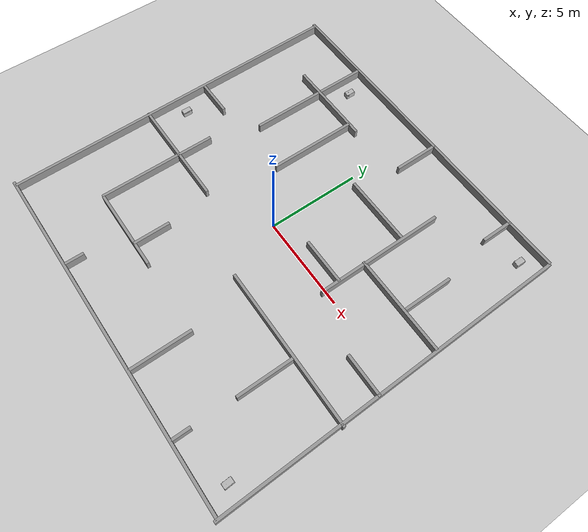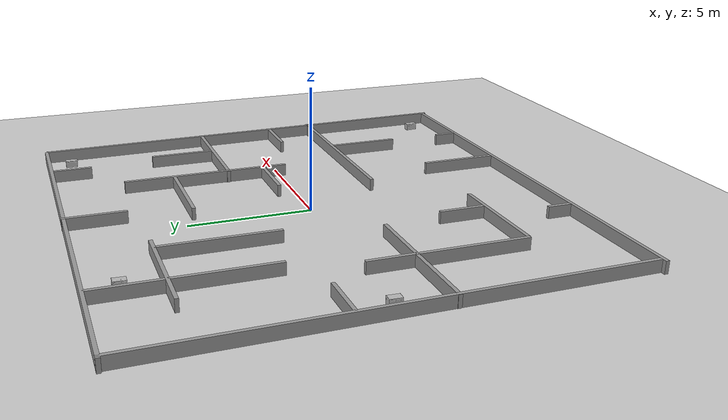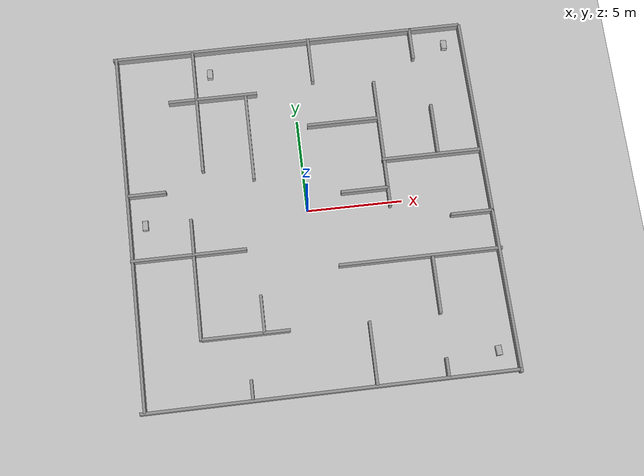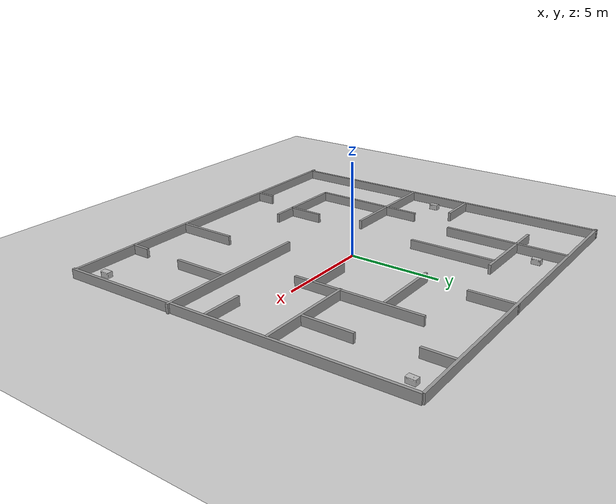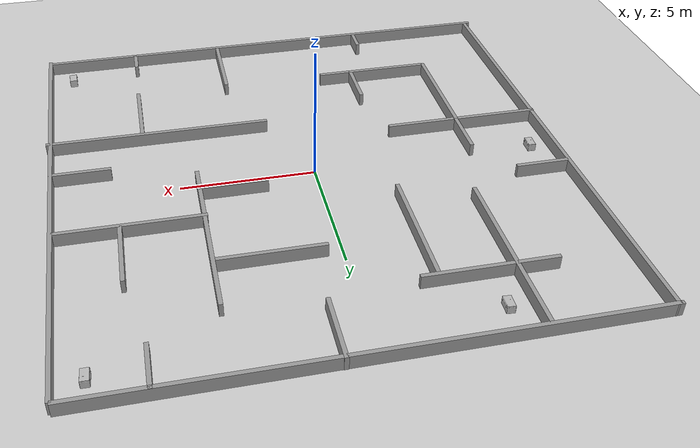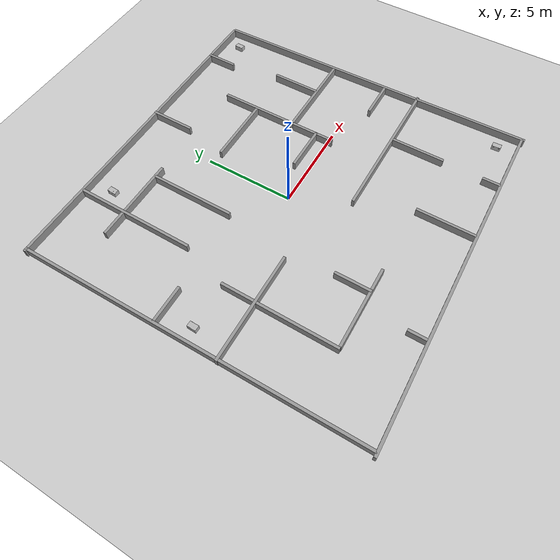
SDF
<sdf version="1.7">
 <world name="default">
  <light name="sun" type="directional">
   <cast_shadows>0</cast_shadows>
   <pose>0 0 10 0 -0 0</pose>
   <diffuse>0.8 0.8 0.8 1</diffuse>
   <specular>0.2 0.2 0.2 1</specular>
   <attenuation>
    <range>1000</range>
    <constant>0.9</constant>
    <linear>0.01</linear>
    <quadratic>0.001</quadratic>
   </attenuation>
   <direction>-0.5 0.1 -0.9</direction>
   <spot><inner_angle>0</inner_angle><outer_angle>0</outer_angle><falloff>0</falloff></spot>
  </light>
  <model name="ground_plane">
   <static>1</static>
   <link name="link">
    <collision name="collision">
     <geometry><plane><normal>0 0 1</normal><size>100 100</size></plane></geometry>
     <surface><friction><ode><mu>100</mu><mu2>50</mu2></ode></friction></surface>
    </collision>
    <visual name="visual">
     <cast_shadows>0</cast_shadows>
     <geometry><plane><normal>0 0 1</normal><size>100 100</size></plane></geometry>
     <material>
      <script><uri>file://media/materials/scripts/gazebo.material</uri><name>Gazebo/Grey</name></script>
     </material>
    </visual>
   </link>
  </model>
  <gravity>0 0 -9.8</gravity>
  <scene><ambient>0.4 0.4 0.4 1</ambient><background>0.7 0.7 0.7 1</background><shadows>1</shadows></scene>
  <magnetic_field>6e-06 2.3e-05 -4.2e-05</magnetic_field>
  <atmosphere type="adiabatic"/>
  <physics type="ode">
   <max_step_size>0.001</max_step_size>
   <real_time_factor>1</real_time_factor>
   <real_time_update_rate>1000</real_time_update_rate>
  </physics>
  <audio><device>default</device></audio>
  <spherical_coordinates>
   <surface_model>EARTH_WGS84</surface_model>
   <latitude_deg>0</latitude_deg>
   <longitude_deg>0</longitude_deg>
   <elevation>0</elevation>
   <heading_deg>0</heading_deg>
  </spherical_coordinates>
  <model name="Untitled">
   <pose>0.1509 -0.023948 0 0 -0 0</pose>
   <link name="Wall_0">
    <collision name="Wall_0_Collision">
     <geometry><box><size>19.0711 0.15 0.5</size></box></geometry>
     <pose>0 0 0.25 0 -0 0</pose>
    </collision>
    <visual name="Wall_0_Visual">
     <pose>0 0 0.25 0 -0 0</pose>
     <geometry><box><size>19.0711 0.15 0.5</size></box></geometry>
     <material>
      <script><uri>file://media/materials/scripts/gazebo.material</uri><name>Gazebo/Grey</name></script>
      <ambient>1 1 1 1</ambient>
     </material>
     <meta><layer>0</layer></meta>
    </visual>
    <pose>-9.41202 0.027338 0 0 -0 1.58112</pose>
   </link>
   <link name="Wall_11">
    <collision name="Wall_11_Collision">
     <geometry><box><size>4.5 0.15 0.5</size></box></geometry>
     <pose>0 0 0.25 0 -0 0</pose>
    </collision>
    <visual name="Wall_11_Visual">
     <pose>0 0 0.25 0 -0 0</pose>
     <geometry><box><size>4.5 0.15 0.5</size></box></geometry>
     <material>
      <script><uri>file://media/materials/scripts/gazebo.material</uri><name>Gazebo/Grey</name></script>
      <ambient>1 1 1 1</ambient>
     </material>
     <meta><layer>0</layer></meta>
    </visual>
    <pose>-3.9379 -6.16505 0 0 -0 0</pose>
   </link>
   <link name="Wall_13">
    <collision name="Wall_13_Collision">
     <geometry><box><size>7 0.15 0.5</size></box></geometry>
     <pose>0 0 0.25 0 -0 0</pose>
    </collision>
    <visual name="Wall_13_Visual">
     <pose>0 0 0.25 0 -0 0</pose>
     <geometry><box><size>7 0.15 0.5</size></box></geometry>
     <material>
      <script><uri>file://media/materials/scripts/gazebo.material</uri><name>Gazebo/Grey</name></script>
      <ambient>1 1 1 1</ambient>
     </material>
     <meta><layer>0</layer></meta>
    </visual>
    <pose>4.1881 3.23495 0 0 -0 1.5708</pose>
   </link>
   <link name="Wall_16">
    <collision name="Wall_16_Collision">
     <geometry><box><size>5.25 0.15 0.5</size></box></geometry>
     <pose>0 0 0.25 0 -0 0</pose>
    </collision>
    <visual name="Wall_16_Visual">
     <pose>0 0 0.25 0 -0 0</pose>
     <geometry><box><size>5.25 0.15 0.5</size></box></geometry>
     <material>
      <script><uri>file://media/materials/scripts/gazebo.material</uri><name>Gazebo/Grey</name></script>
      <ambient>1 1 1 1</ambient>
     </material>
     <meta><layer>0</layer></meta>
    </visual>
    <pose>6.7031 2.30195 0 0 -0 0</pose>
   </link>
   <link name="Wall_18">
    <collision name="Wall_18_Collision">
     <geometry><box><size>2.75 0.15 0.5</size></box></geometry>
     <pose>0 0 0.25 0 -0 0</pose>
    </collision>
    <visual name="Wall_18_Visual">
     <pose>0 0 0.25 0 -0 0</pose>
     <geometry><box><size>2.75 0.15 0.5</size></box></geometry>
     <material>
      <script><uri>file://media/materials/scripts/gazebo.material</uri><name>Gazebo/Grey</name></script>
      <ambient>1 1 1 1</ambient>
     </material>
     <meta><layer>0</layer></meta>
    </visual>
    <pose>7.0691 3.70295 0 0 -0 1.5708</pose>
   </link>
   <link name="Wall_2">
    <collision name="Wall_2_Collision">
     <geometry><box><size>18.8914 0.15 0.5</size></box></geometry>
     <pose>0 0 0.25 0 -0 0</pose>
    </collision>
    <visual name="Wall_2_Visual">
     <pose>0 0 0.25 0 -0 0</pose>
     <geometry><box><size>18.8914 0.15 0.5</size></box></geometry>
     <material>
      <script><uri>file://media/materials/scripts/gazebo.material</uri><name>Gazebo/Grey</name></script>
      <ambient>1 1 1 1</ambient>
     </material>
     <meta><layer>0</layer></meta>
    </visual>
    <pose>-0.220361 9.5009 0 0 -0 0.001441</pose>
   </link>
   <link name="Wall_21">
    <collision name="Wall_21_Collision">
     <geometry><box><size>3.75 0.15 0.5</size></box></geometry>
     <pose>0 0 0.25 0 -0 0</pose>
    </collision>
    <visual name="Wall_21_Visual">
     <pose>0 0 0.25 0 -0 0</pose>
     <geometry><box><size>3.75 0.15 0.5</size></box></geometry>
     <material>
      <script><uri>file://media/materials/scripts/gazebo.material</uri><name>Gazebo/Grey</name></script>
      <ambient>1 1 1 1</ambient>
     </material>
     <meta><layer>0</layer></meta>
    </visual>
    <pose>2.2381 4.63895 0 0 -0 0</pose>
   </link>
   <link name="Wall_23">
    <collision name="Wall_23_Collision">
     <geometry><box><size>6.75 0.15 0.5</size></box></geometry>
     <pose>0 0 0.25 0 -0 0</pose>
    </collision>
    <visual name="Wall_23_Visual">
     <pose>0 0 0.25 0 -0 0</pose>
     <geometry><box><size>6.75 0.15 0.5</size></box></geometry>
     <material>
      <script><uri>file://media/materials/scripts/gazebo.material</uri><name>Gazebo/Grey</name></script>
      <ambient>1 1 1 1</ambient>
     </material>
     <meta><layer>0</layer></meta>
    </visual>
    <pose>-5.3799 6.09495 0 0 -0 1.5708</pose>
   </link>
   <link name="Wall_26">
    <collision name="Wall_26_Collision">
     <geometry><box><size>8.5 0.15 0.5</size></box></geometry>
     <pose>0 0 0.25 0 -0 0</pose>
    </collision>
    <visual name="Wall_26_Visual">
     <pose>0 0 0.25 0 -0 0</pose>
     <geometry><box><size>8.5 0.15 0.5</size></box></geometry>
     <material>
      <script><uri>file://media/materials/scripts/gazebo.material</uri><name>Gazebo/Grey</name></script>
      <ambient>1 1 1 1</ambient>
     </material>
     <meta><layer>0</layer></meta>
    </visual>
    <pose>5.3801 -3.11305 0 0 -0 0</pose>
   </link>
   <link name="Wall_28">
    <collision name="Wall_28_Collision">
     <geometry><box><size>3 0.15 0.5</size></box></geometry>
     <pose>0 0 0.25 0 -0 0</pose>
    </collision>
    <visual name="Wall_28_Visual">
     <pose>0 0 0.25 0 -0 0</pose>
     <geometry><box><size>3 0.15 0.5</size></box></geometry>
     <material>
      <script><uri>file://media/materials/scripts/gazebo.material</uri><name>Gazebo/Grey</name></script>
      <ambient>1 1 1 1</ambient>
     </material>
     <meta><layer>0</layer></meta>
    </visual>
    <pose>5.9901 -4.67205 0 0 -0 1.5708</pose>
   </link>
   <link name="Wall_3">
    <collision name="Wall_3_Collision">
     <geometry><box><size>19.0735 0.15 0.5</size></box></geometry>
     <pose>0 0 0.25 0 -0 0</pose>
    </collision>
    <visual name="Wall_3_Visual">
     <pose>0 0 0.25 0 -0 0</pose>
     <geometry><box><size>19.0735 0.15 0.5</size></box></geometry>
     <material>
      <script><uri>file://media/materials/scripts/gazebo.material</uri><name>Gazebo/Grey</name></script>
      <ambient>1 1 1 1</ambient>
     </material>
     <meta><layer>0</layer></meta>
    </visual>
    <pose>9.41072 -0.027019 0 0 -0 -1.55187</pose>
   </link>
   <link name="Wall_30">
    <collision name="Wall_30_Collision">
     <geometry><box><size>4.75 0.15 0.5</size></box></geometry>
     <pose>0 0 0.25 0 -0 0</pose>
    </collision>
    <visual name="Wall_30_Visual">
     <pose>0 0 0.25 0 -0 0</pose>
     <geometry><box><size>4.75 0.15 0.5</size></box></geometry>
     <material>
      <script><uri>file://media/materials/scripts/gazebo.material</uri><name>Gazebo/Grey</name></script>
      <ambient>1 1 1 1</ambient>
     </material>
     <meta><layer>0</layer></meta>
    </visual>
    <pose>-4.5039 6.74495 0 0 -0 3.14159</pose>
   </link>
   <link name="Wall_32">
    <collision name="Wall_32_Collision">
     <geometry><box><size>3.25 0.15 0.5</size></box></geometry>
     <pose>0 0 0.25 0 -0 0</pose>
    </collision>
    <visual name="Wall_32_Visual">
     <pose>0 0 0.25 0 -0 0</pose>
     <geometry><box><size>3.25 0.15 0.5</size></box></geometry>
     <material>
      <script><uri>file://media/materials/scripts/gazebo.material</uri><name>Gazebo/Grey</name></script>
      <ambient>1 1 1 1</ambient>
     </material>
     <meta><layer>0</layer></meta>
    </visual>
    <pose>2.3311 -7.78005 0 0 -0 -1.5708</pose>
   </link>
   <link name="Wall_4">
    <collision name="Wall_4_Collision">
     <geometry><box><size>19.1358 0.15 0.5</size></box></geometry>
     <pose>0 0 0.25 0 -0 0</pose>
    </collision>
    <visual name="Wall_4_Visual">
     <pose>0 0 0.25 0 -0 0</pose>
     <geometry><box><size>19.1358 0.15 0.5</size></box></geometry>
     <material>
      <script><uri>file://media/materials/scripts/gazebo.material</uri><name>Gazebo/Grey</name></script>
      <ambient>1 1 1 1</ambient>
     </material>
     <meta><layer>0</layer></meta>
    </visual>
    <pose>0.015637 -9.45989 0 0 -0 -3.13588</pose>
   </link>
   <link name="Wall_6">
    <collision name="Wall_6_Collision">
     <geometry><box><size>6 0.15 0.5</size></box></geometry>
     <pose>0 0 0.25 0 -0 0</pose>
    </collision>
    <visual name="Wall_6_Visual">
     <pose>0 0 0.25 0 -0 0</pose>
     <geometry><box><size>6 0.15 0.5</size></box></geometry>
     <material>
      <script><uri>file://media/materials/scripts/gazebo.material</uri><name>Gazebo/Grey</name></script>
      <ambient>1 1 1 1</ambient>
     </material>
     <meta><layer>0</layer></meta>
    </visual>
    <pose>-6.4909 -1.73805 0 0 -0 3.14159</pose>
   </link>
   <link name="Wall_8">
    <collision name="Wall_8_Collision">
     <geometry><box><size>4.5 0.15 0.5</size></box></geometry>
     <pose>0 0 0.25 0 -0 0</pose>
    </collision>
    <visual name="Wall_8_Visual">
     <pose>0 0 0.25 0 -0 0</pose>
     <geometry><box><size>4.5 0.15 0.5</size></box></geometry>
     <material>
      <script><uri>file://media/materials/scripts/gazebo.material</uri><name>Gazebo/Grey</name></script>
      <ambient>1 1 1 1</ambient>
     </material>
     <meta><layer>0</layer></meta>
    </visual>
    <pose>-6.2409 -3.96305 0 0 -0 1.5708</pose>
   </link>
   <static>1</static>
  </model>
  <model name="Untitled_0">
   <pose>-0.894 0.236 0 0 -0 0</pose>
   <link name="Wall_39">
    <collision name="Wall_39_Collision">
     <geometry><box><size>2 0.15 0.5</size></box></geometry>
     <pose>0 0 0.25 0 -0 0</pose>
    </collision>
    <visual name="Wall_39_Visual">
     <pose>0 0 0.25 0 -0 0</pose>
     <geometry><box><size>2 0.15 0.5</size></box></geometry>
     <material>
      <script><uri>file://media/materials/scripts/gazebo.material</uri><name>Gazebo/Grey</name></script>
      <ambient>1 1 1 1</ambient>
     </material>
     <meta><layer>0</layer></meta>
    </visual>
    <pose>-5.182 -1.092 0 0 -0 1.5708</pose>
   </link>
   <link name="Wall_41">
    <collision name="Wall_41_Collision">
     <geometry><box><size>2 0.15 0.5</size></box></geometry>
     <pose>0 0 0.25 0 -0 0</pose>
    </collision>
    <visual name="Wall_41_Visual">
     <pose>0 0 0.25 0 -0 0</pose>
     <geometry><box><size>2 0.15 0.5</size></box></geometry>
     <material>
      <script><uri>file://media/materials/scripts/gazebo.material</uri><name>Gazebo/Grey</name></script>
      <ambient>1 1 1 1</ambient>
     </material>
     <meta><layer>0</layer></meta>
    </visual>
    <pose>-1.968 -5.473 0 0 -0 1.5708</pose>
   </link>
   <link name="Wall_43">
    <collision name="Wall_43_Collision">
     <geometry><box><size>2.5 0.15 0.5</size></box></geometry>
     <pose>0 0 0.25 0 -0 0</pose>
    </collision>
    <visual name="Wall_43_Visual">
     <pose>0 0 0.25 0 -0 0</pose>
     <geometry><box><size>2.5 0.15 0.5</size></box></geometry>
     <material>
      <script><uri>file://media/materials/scripts/gazebo.material</uri><name>Gazebo/Grey</name></script>
      <ambient>1 1 1 1</ambient>
     </material>
     <meta><layer>0</layer></meta>
    </visual>
    <pose>4.007 0.497 0 0 -0 3.14159</pose>
   </link>
   <link name="Wall_45">
    <collision name="Wall_45_Collision">
     <geometry><box><size>4.75 0.15 0.5</size></box></geometry>
     <pose>0 0 0.25 0 -0 0</pose>
    </collision>
    <visual name="Wall_45_Visual">
     <pose>0 0 0.25 0 -0 0</pose>
     <geometry><box><size>4.75 0.15 0.5</size></box></geometry>
     <material>
      <script><uri>file://media/materials/scripts/gazebo.material</uri><name>Gazebo/Grey</name></script>
      <ambient>1 1 1 1</ambient>
     </material>
     <meta><layer>0</layer></meta>
    </visual>
    <pose>-1.706 4.098 0 0 -0 1.5708</pose>
   </link>
   <static>1</static>
  </model>
  <model name="Untitled_1">
   <pose>0.203 0.06 0 0 -0 0</pose>
   <link name="Wall_0">
    <collision name="Wall_0_Collision">
     <geometry><box><size>2 0.15 0.5</size></box></geometry>
     <pose>0 0 0.25 0 -0 0</pose>
    </collision>
    <visual name="Wall_0_Visual">
     <pose>0 0 0.25 0 -0 0</pose>
     <geometry><box><size>2 0.15 0.5</size></box></geometry>
     <material>
      <script><uri>file://media/materials/scripts/gazebo.material</uri><name>Gazebo/Grey</name></script>
      <ambient>1 1 1 1</ambient>
     </material>
     <meta><layer>0</layer></meta>
    </visual>
    <pose>-8.445 1.682 0 0 -0 3.14159</pose>
   </link>
   <link name="Wall_15">
    <collision name="Wall_15_Collision">
     <geometry><box><size>1 0.15 0.5</size></box></geometry>
     <pose>0 0 0.25 0 -0 0</pose>
    </collision>
    <visual name="Wall_15_Visual">
     <pose>0 0 0.25 0 -0 0</pose>
     <geometry><box><size>1 0.15 0.5</size></box></geometry>
     <material>
      <script><uri>file://media/materials/scripts/gazebo.material</uri><name>Gazebo/Grey</name></script>
      <ambient>1 1 1 1</ambient>
     </material>
     <meta><layer>0</layer></meta>
    </visual>
    <pose>-3.966 -9.006 0 0 -0 -1.5708</pose>
   </link>
   <link name="Wall_2">
    <collision name="Wall_2_Collision">
     <geometry><box><size>2.5 0.15 0.5</size></box></geometry>
     <pose>0 0 0.25 0 -0 0</pose>
    </collision>
    <visual name="Wall_2_Visual">
     <pose>0 0 0.25 0 -0 0</pose>
     <geometry><box><size>2.5 0.15 0.5</size></box></geometry>
     <material>
      <script><uri>file://media/materials/scripts/gazebo.material</uri><name>Gazebo/Grey</name></script>
      <ambient>1 1 1 1</ambient>
     </material>
     <meta><layer>0</layer></meta>
    </visual>
    <pose>0.884 8.256 0 0 -0 1.5708</pose>
   </link>
   <link name="Wall_4">
    <collision name="Wall_4_Collision">
     <geometry><box><size>2.25 0.15 0.5</size></box></geometry>
     <pose>0 0 0.25 0 -0 0</pose>
    </collision>
    <visual name="Wall_4_Visual">
     <pose>0 0 0.25 0 -0 0</pose>
     <geometry><box><size>2.25 0.15 0.5</size></box></geometry>
     <material>
      <script><uri>file://media/materials/scripts/gazebo.material</uri><name>Gazebo/Grey</name></script>
      <ambient>1 1 1 1</ambient>
     </material>
     <meta><layer>0</layer></meta>
    </visual>
    <pose>8.32 -1.16 0 0 -0 3.14159</pose>
   </link>
   <link name="Wall_6">
    <collision name="Wall_6_Collision">
     <geometry><box><size>1 0.15 0.5</size></box></geometry>
     <pose>0 0 0.25 0 -0 0</pose>
    </collision>
    <visual name="Wall_6_Visual">
     <pose>0 0 0.25 0 -0 0</pose>
     <geometry><box><size>1 0.15 0.5</size></box></geometry>
     <material>
      <script><uri>file://media/materials/scripts/gazebo.material</uri><name>Gazebo/Grey</name></script>
      <ambient>1 1 1 1</ambient>
     </material>
     <meta><layer>0</layer></meta>
    </visual>
    <pose>5.887 -9.002 0 0 -0 1.5708</pose>
   </link>
   <link name="Wall_8">
    <collision name="Wall_8_Collision">
     <geometry><box><size>1.75 0.15 0.5</size></box></geometry>
     <pose>0 0 0.25 0 -0 0</pose>
    </collision>
    <visual name="Wall_8_Visual">
     <pose>0 0 0.25 0 -0 0</pose>
     <geometry><box><size>1.75 0.15 0.5</size></box></geometry>
     <material>
      <script><uri>file://media/materials/scripts/gazebo.material</uri><name>Gazebo/Grey</name></script>
      <ambient>1 1 1 1</ambient>
     </material>
     <meta><layer>0</layer></meta>
    </visual>
    <pose>6.45 8.611 0 0 -0 1.5708</pose>
   </link>
   <static>1</static>
  </model>
  <model name="First Aid Kit">
   <static>1</static>
   <link name="link">
    <collision name="collision">
     <geometry>
      <mesh>
       <uri>/workspaces/robot-programming-assessment-1/install/john_bot/share/john_bot/models/First Aid Kit/meshes/first_aid_kit.dae</uri>
       <scale>0.5 0.5 0.5</scale>
      </mesh>
     </geometry>
    </collision>
    <visual name="visual">
     <geometry>
      <mesh>
       <uri>/workspaces/robot-programming-assessment-1/install/john_bot/share/john_bot/models/First Aid Kit/meshes/first_aid_kit.dae</uri>
       <scale>0.5 0.5 0.5</scale>
      </mesh>
     </geometry>
    </visual>
   </link>
   <pose>-8.45536 0.104794 0.171692 1.57089 -0.002991 1.5385</pose>
  </model>
  <model name="First Aid Kit_clone">
   <static>1</static>
   <link name="link">
    <collision name="collision">
     <geometry>
      <mesh>
       <uri>/workspaces/robot-programming-assessment-1/install/john_bot/share/john_bot/models/First Aid Kit/meshes/first_aid_kit.dae</uri>
       <scale>0.5 0.5 0.5</scale>
      </mesh>
     </geometry>
    </collision>
    <visual name="visual">
     <geometry>
      <mesh>
       <uri>/workspaces/robot-programming-assessment-1/install/john_bot/share/john_bot/models/First Aid Kit/meshes/first_aid_kit.dae</uri>
       <scale>0.5 0.5 0.5</scale>
      </mesh>
     </geometry>
    </visual>
   </link>
   <pose>-4.38352 8.17841 0.171692 1.57089 -0.002991 1.5385</pose>
  </model>
  <model name="First Aid Kit_clone_0">
   <static>1</static>
   <link name="link">
    <collision name="collision">
     <geometry>
      <mesh>
       <uri>/workspaces/robot-programming-assessment-1/install/john_bot/share/john_bot/models/First Aid Kit/meshes/first_aid_kit.dae</uri>
       <scale>0.5 0.5 0.5</scale>
      </mesh>
     </geometry>
    </collision>
    <visual name="visual">
     <geometry>
      <mesh>
       <uri>/workspaces/robot-programming-assessment-1/install/john_bot/share/john_bot/models/First Aid Kit/meshes/first_aid_kit.dae</uri>
       <scale>0.5 0.5 0.5</scale>
      </mesh>
     </geometry>
    </visual>
   </link>
   <pose>8.79104 -8.35248 0.171692 1.57095 0.002988 -1.52024</pose>
  </model>
  <model name="First Aid Kit_clone_clone">
   <static>1</static>
   <link name="link">
    <collision name="collision">
     <geometry>
      <mesh>
       <uri>/workspaces/robot-programming-assessment-1/install/john_bot/share/john_bot/models/First Aid Kit/meshes/first_aid_kit.dae</uri>
       <scale>0.5 0.5 0.5</scale>
      </mesh>
     </geometry>
    </collision>
    <visual name="visual">
     <geometry>
      <mesh>
       <uri>/workspaces/robot-programming-assessment-1/install/john_bot/share/john_bot/models/First Aid Kit/meshes/first_aid_kit.dae</uri>
       <scale>0.5 0.5 0.5</scale>
      </mesh>
     </geometry>
    </visual>
   </link>
   <pose>8.42742 8.49799 0.171692 1.5707 0.002991 -1.60469</pose>
  </model>
  <light name="user_point_light_0" type="point">
   <pose>-12.9439 -15.4312 1 0 -0 0</pose>
   <diffuse>0.5 0.5 0.5 1</diffuse>
   <specular>0.1 0.1 0.1 1</specular>
   <attenuation>
    <range>20</range>
    <constant>0.5</constant>
    <linear>0.01</linear>
    <quadratic>0.001</quadratic>
   </attenuation>
   <cast_shadows>0</cast_shadows>
   <direction>0 0 -1</direction>
   <spot><inner_angle>0</inner_angle><outer_angle>0</outer_angle><falloff>0</falloff></spot>
  </light>
  <light name="user_point_light_1" type="point">
   <pose>-0.306088 -16.9956 1 0 -0 0</pose>
   <diffuse>0.5 0.5 0.5 1</diffuse>
   <specular>0.1 0.1 0.1 1</specular>
   <attenuation>
    <range>20</range>
    <constant>0.5</constant>
    <linear>0.01</linear>
    <quadratic>0.001</quadratic>
   </attenuation>
   <cast_shadows>0</cast_shadows>
   <direction>0 0 -1</direction>
   <spot><inner_angle>0</inner_angle><outer_angle>0</outer_angle><falloff>0</falloff></spot>
  </light>
  <light name="user_point_light_2" type="point">
   <pose>-14.7498 16.0911 1 0 -0 0</pose>
   <diffuse>0.5 0.5 0.5 1</diffuse>
   <specular>0.1 0.1 0.1 1</specular>
   <attenuation>
    <range>20</range>
    <constant>0.5</constant>
    <linear>0.01</linear>
    <quadratic>0.001</quadratic>
   </attenuation>
   <cast_shadows>0</cast_shadows>
   <direction>0 0 -1</direction>
   <spot><inner_angle>0</inner_angle><outer_angle>0</outer_angle><falloff>0</falloff></spot>
  </light>
  <light name="user_point_light_3" type="point">
   <pose>-0.023794 16.563 1 0 -0 0</pose>
   <diffuse>0.5 0.5 0.5 1</diffuse>
   <specular>0.1 0.1 0.1 1</specular>
   <attenuation>
    <range>20</range>
    <constant>0.5</constant>
    <linear>0.01</linear>
    <quadratic>0.001</quadratic>
   </attenuation>
   <cast_shadows>0</cast_shadows>
   <direction>0 0 -1</direction>
   <spot><inner_angle>0</inner_angle><outer_angle>0</outer_angle><falloff>0</falloff></spot>
  </light>
  <light name="user_point_light_4" type="point">
   <pose>12.1222 15.6836 1 0 -0 0</pose>
   <diffuse>0.5 0.5 0.5 1</diffuse>
   <specular>0.1 0.1 0.1 1</specular>
   <attenuation>
    <range>20</range>
    <constant>0.5</constant>
    <linear>0.01</linear>
    <quadratic>0.001</quadratic>
   </attenuation>
   <cast_shadows>0</cast_shadows>
   <direction>0 0 -1</direction>
   <spot><inner_angle>0</inner_angle><outer_angle>0</outer_angle><falloff>0</falloff></spot>
  </light>
  <light name="user_point_light_5" type="point">
   <pose>11.6879 -17.7731 1 0 -0 0</pose>
   <diffuse>0.5 0.5 0.5 1</diffuse>
   <specular>0.1 0.1 0.1 1</specular>
   <attenuation>
    <range>20</range>
    <constant>0.5</constant>
    <linear>0.01</linear>
    <quadratic>0.001</quadratic>
   </attenuation>
   <cast_shadows>0</cast_shadows>
   <direction>0 0 -1</direction>
   <spot><inner_angle>0</inner_angle><outer_angle>0</outer_angle><falloff>0</falloff></spot>
  </light>
 </world>
</sdf>
